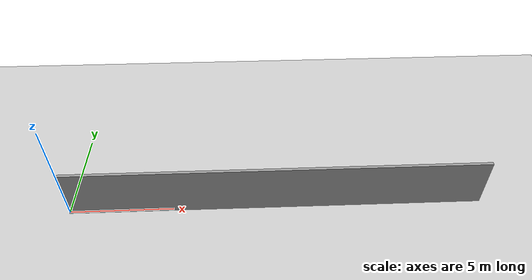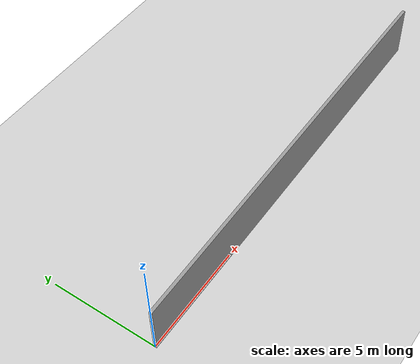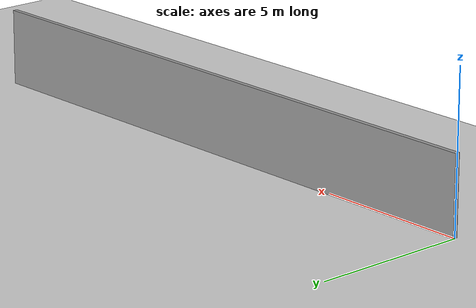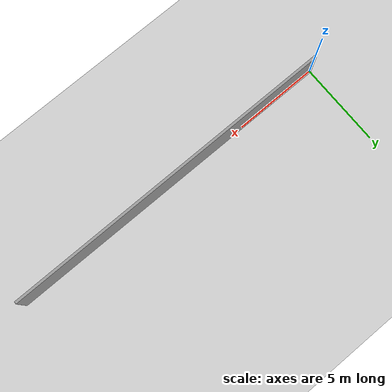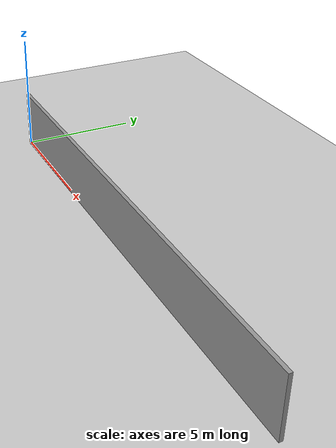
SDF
<?xml version='1.0'?>
<sdf version='1.7'>
  <world name='default'>
    <!-- 太阳光：没有它 Gazebo 里是黑的 -->
    <include>
      <uri>model://sun</uri>
    </include>

    <!-- 地面：100m x 100m 的无限平面 -->
    <include>
      <uri>model://ground_plane</uri>
    </include>
        <model name="wall_south">
      <static>true</static>
      <pose>10 0 1.25 0 0 0</pose>
      <link name="link">
        <collision name="collision">
          <geometry><box><size>20 0.15 2.5</size></box></geometry>
        </collision>
        <visual name="visual">
          <geometry><box><size>20 0.15 2.5</size></box></geometry>
          <material><ambient>0.6 0.6 0.6 1</ambient><diffuse>0.6 0.6 0.6 1</diffuse></material>
        </visual>
      </link>
    </model>
  </world>
</sdf>
